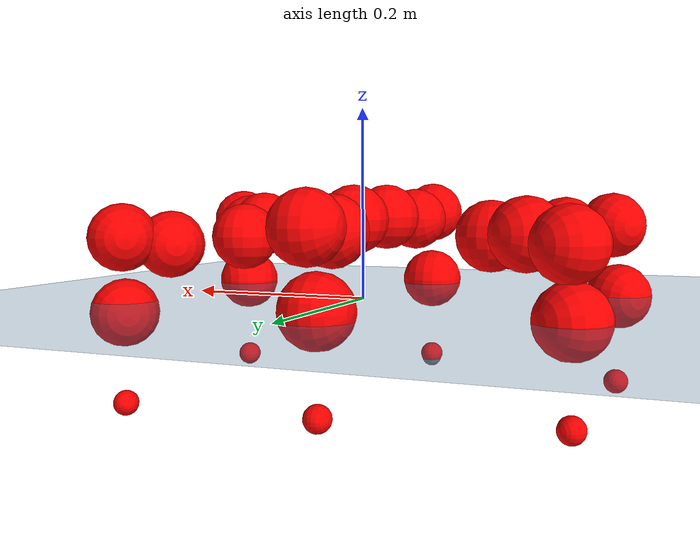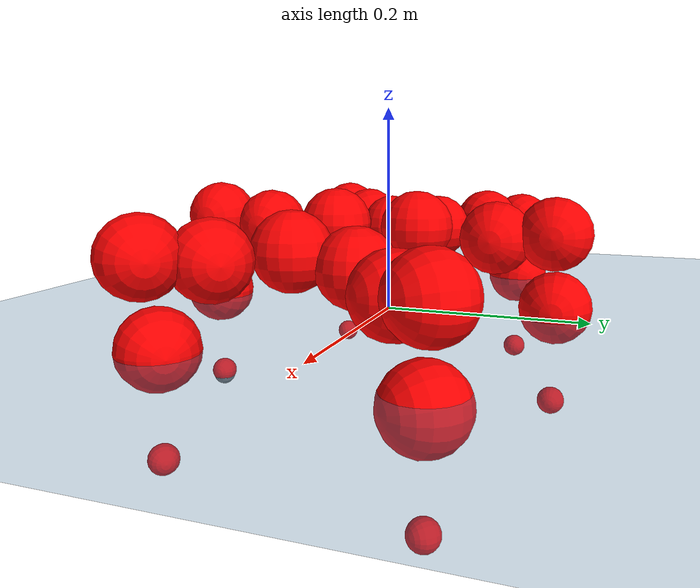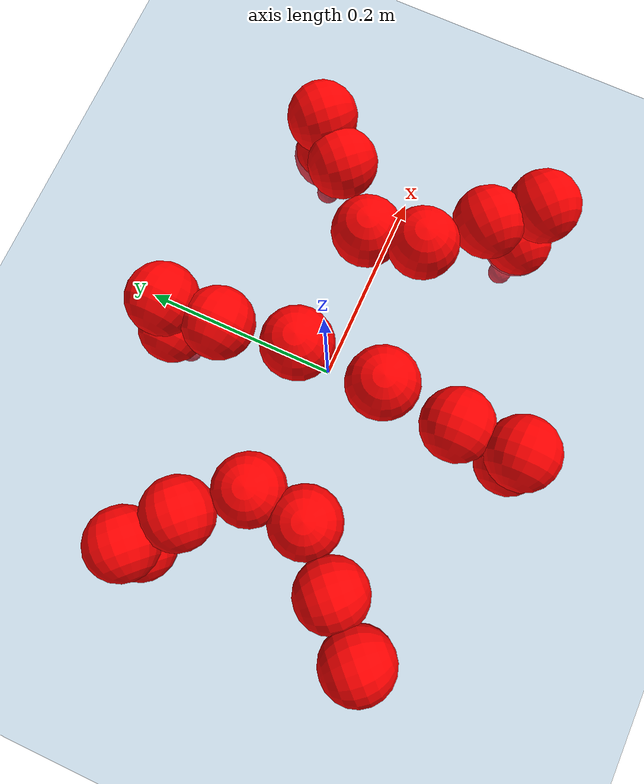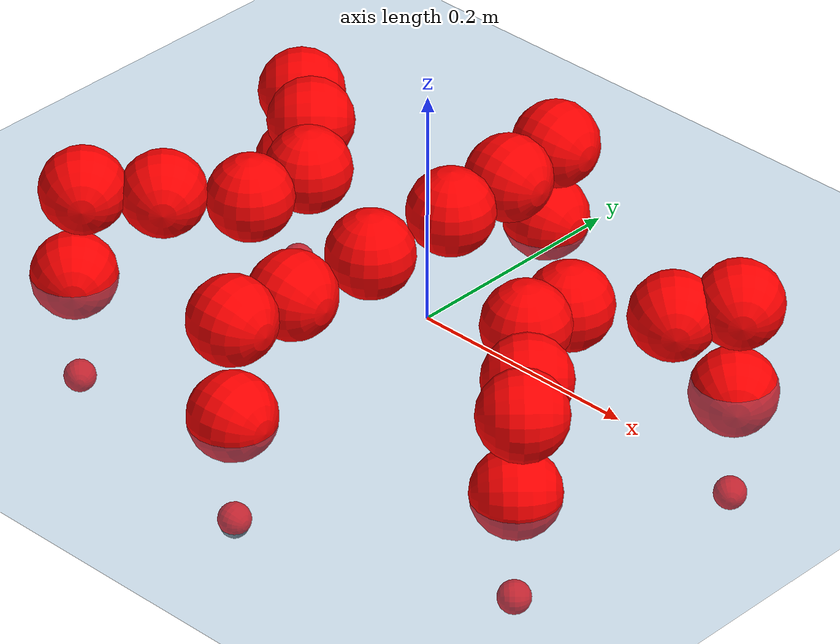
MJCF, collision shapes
<mujoco model="Golem">
  <compiler angle="radian" assetdir="assets" balanceinertia="true" inertiafromgeom="false"/>

  <option timestep="0.005" density="1.2" viscosity="2e-05"/>

  <size nkey="1"/>

  <visual>
    <quality shadowsize="8192"/>
    <map shadowclip="0.5"/>
  </visual>

  <default>
    <default class="/">
      <joint armature="0.01" damping="0.01" frictionloss="0.01"/>
      <geom contype="0" conaffinity="0" group="1" solref="-1000 -80"/>
      <site size="0.01 0.005 0.005" group="5"/>
      <general forcelimited="true" biastype="affine" gainprm="25" biasprm="0 -25 -0.5"/>
      <default class="visual">
        <geom type="mesh" group="2"/>
      </default>
      <default class="collision">
        <geom group="3"/>
      </default>
      <default class="foot">
        <geom size="0.01 0 0" condim="6" group="4" priority="1" solimp="0.015 1 0.01"/>
      </default>
      <default class="reward_collision_sphere">
        <geom group="5" rgba="1 0 0 1"/>
      </default>
    </default>
  </default>

  <asset>
    <texture type="skybox" colorspace="auto" name="//unnamed_texture_0" builtin="gradient" rgb1="0.95 0.95 0.95" rgb2="0.95 0.95 0.95" width="100" height="600"/>
    <texture type="2d" colorspace="auto" name="texplane" builtin="checker" rgb1="0.345 0.575 0.748" rgb2="0.345 0.575 0.748" markrgb="1 1 1" width="512" height="512"/>
    <material name="MatPlane" class="/" texture="texplane" texuniform="true" texrepeat="2 2" specular="0.9"/>
    <mesh name="body" class="/" file="body.stl" scale="0.001 0.001 0.001"/>
    <mesh name="coxa" class="/" file="coxa.stl" scale="0.001 0.001 0.001"/>
    <mesh name="femur" class="/" file="femur.stl" scale="0.001 0.001 0.001"/>
    <mesh name="tibia" class="/" file="tibia.stl" scale="0.001 0.001 0.001"/>
    <mesh name="tarsus" class="/" file="tarsus.stl" scale="0.001 0.001 0.001"/>
  </asset>

  <worldbody>
    <geom name="floor" class="/" size="100 100 0.125" type="plane" group="0" material="MatPlane"/>
    <light name="toplight_shadow" class="/" pos="0 0 5" dir="0.0990148 0.0990148 -0.990148" type="directional" ambient="0.04 0.04 0.04" diffuse="0.55 0.55 0.55" specular="0.12 0.12 0.12"/>
    <light name="toplight_fill" class="/" pos="0 0 5" dir="0.0990148 0.0990148 -0.990148" type="directional" castshadow="false" ambient="0.04 0.04 0.04" diffuse="0.3 0.3 0.3" specular="0.08 0.08 0.08"/>
    <body name="trunk" pos="-0.0039515 -0.0104845 -0.00639936" quat="1 1.64665e-05 0.000345127 0.000670844">
      <inertial pos="0.00485978 0.00187775 0.0119645" quat="0.999996 0.000499422 0.00262802 -0.00045316" mass="2.05627" diaginertia="0.00526605 0.000364642 0.0321187"/>
      <joint name="//unnamed_joint_0" type="free"/>
      <geom name="//unnamed_geom_1" class="/" pos="0 0 0.0805858" quat="1 0 0 0" type="mesh" rgba="0.9 0.9 0.9 1" mesh="body"/>
      <site name="imu" class="/" pos="0.115486 0.0351293 0.125463" size="0.00891361"/>
      <camera name="track" class="/" pos="0 -1.05409 0" quat="0.707107 0.707107 0 0" mode="trackcom"/>
      <camera name="ego_camera" class="/" pos="0.115425 0 0.125915" quat="-0.5 -0.5 0.5 0.5"/>
      <body name="coxa_RR" pos="-0.1627 -0.0537145 0.0734341" quat="0.384557 0.00443969 -1.99001e-05 -0.923091">
        <inertial pos="-0.000428439 0.0118102 -0.0113138" quat="0.999615 0.0254106 -0.0109696 -0.00194301" mass="0.123382" diaginertia="0.00530181 0.000417931 0.0316609"/>
        <joint name="coxa_joint_RR" class="/" pos="0 0 0" axis="0.00119493 -0.00428742 -0.99999" range="-3.30572 3.15219" armature="0.00833554" damping="0.0185287" frictionloss="0.00915559"/>
        <geom name="//unnamed_geom_2" class="/" type="mesh" rgba="0.2 0.2 0.2 1" mesh="coxa"/>
        <geom name="//unnamed_geom_3" class="reward_collision_sphere" size="0.0356545" pos="-0.0266366 0 0"/>
        <body name="femur_RR" pos="0.0411345 -0.000391713 0.00497474" quat="0.500901 -0.496103 0.500046 0.502925">
          <inertial pos="0.00840486 -0.00252949 0.0019833" quat="0.999997 -0.00155089 -0.0015957 0.000490938" mass="0.13662" diaginertia="0.00530651 0.00038606 0.0301988"/>
          <joint name="femur_joint_RR" class="/" pos="0 0 0" axis="-0.00371324 0.00659734 -0.999971" range="-2.99642 3.01626" armature="0.0127216" damping="0.025922" frictionloss="0.00882302"/>
          <geom name="//unnamed_geom_4" class="/" type="mesh" rgba="0.9 0.9 0.9 1" mesh="femur"/>
          <geom name="//unnamed_geom_5" class="reward_collision_sphere" size="0.0356545"/>
          <body name="tibia_RR" pos="-0.00525129 -0.0626339 0.000343154" quat="4.69973e-05 1 1.63968e-05 0.000132548">
            <inertial pos="-0.00555021 0.000695442 -0.00182253" quat="0.999566 0.0178347 -0.00252614 0.0233109" mass="0.145626" diaginertia="0.00503172 0.000337269 0.0248979"/>
            <joint name="tibia_joint_RR" class="/" pos="0 0 0" axis="0.00743021 0.0387733 0.99922" stiffness="0.0230311" range="-3.0379 3.39965" armature="0.00945117" damping="0" frictionloss="0.00860766"/>
            <geom name="//unnamed_geom_6" class="/" type="mesh" rgba="0.2 0.2 0.2 1" mesh="tibia"/>
            <geom name="//unnamed_geom_7" class="reward_collision_sphere" size="0.0356545"/>
            <body name="tarsus_RR" pos="0.078691 0.0105148 0.000487649" quat="1 -1.54937e-05 -3.93294e-08 2.22053e-05">
              <inertial pos="0.0447638 -0.0129305 0.00938524" quat="0.519398 0.50248 0.485361 0.492102" mass="0.123308" diaginertia="0.00515226 0.000311185 0.0275802"/>
              <joint name="tarsus_joint_RR" class="/" pos="0 0 0" axis="-0.00706287 -0.0289794 0.999555" stiffness="0.0039469" range="-3.3718 3.16687" armature="0.00739068" damping="0.0415111" frictionloss="0.00644427"/>
              <geom name="//unnamed_geom_8" class="/" type="mesh" rgba="0.9 0.9 0.9 1" mesh="tarsus"/>
              <geom name="foot_1" class="foot" size="0.00749809" pos="0.0994434 0 0" quat="0 -0.707107 0 0.707107"/>
              <geom name="//unnamed_geom_10" class="reward_collision_sphere" size="0.0356545"/>
              <geom name="//unnamed_geom_11" class="reward_collision_sphere" size="0.0133704" pos="0.0954479 0 0"/>
              <site name="foot_1" class="foot" pos="0.0994434 0 0" quat="0 -0.707107 0 0.707107" size="0.00891361"/>
            </body>
          </body>
        </body>
      </body>
      <body name="coxa_RM" pos="-0.000426266 -0.0745583 0.0915423" quat="0.706962 0.000414748 -0.000370103 -0.707251">
        <inertial pos="0.000481843 -0.00493943 -0.00286207" quat="0.999978 -0.000195949 0.00403338 -0.0052658" mass="0.149824" diaginertia="0.00536293 0.000389085 0.0306895"/>
        <joint name="coxa_joint_RM" class="/" pos="0 0 0" axis="-0.0047752 0.0211968 -0.999764" stiffness="0.054652" range="-3.10693 3.18991" armature="0.00782557" damping="0.0301522" frictionloss="0.0145189"/>
        <geom name="//unnamed_geom_12" class="/" type="mesh" rgba="0.2 0.2 0.2 1" mesh="coxa"/>
        <geom name="//unnamed_geom_13" class="reward_collision_sphere" size="0.0356545" pos="-0.0266366 0 0"/>
        <body name="femur_RM" pos="0.050772 -0.00684701 -0.00400647" quat="0.500135 -0.500157 0.499561 0.500146">
          <inertial pos="-0.00198973 0.00582397 -0.00842322" quat="0.999951 -0.00571781 0.00660382 0.00461232" mass="0.140399" diaginertia="0.00623736 0.00042241 0.0309978"/>
          <joint name="femur_joint_RM" class="/" pos="0 0 0" axis="0.00856171 0.00435686 -0.999954" range="-3.1819 3.25033" armature="0.00888547" damping="0.0469544" frictionloss="0.00836482"/>
          <geom name="//unnamed_geom_14" class="/" type="mesh" rgba="0.9 0.9 0.9 1" mesh="femur"/>
          <geom name="//unnamed_geom_15" class="reward_collision_sphere" size="0.0356545"/>
          <body name="tibia_RM" pos="-0.00682133 -0.0627708 -0.00119511" quat="-0.000185604 1 0.000339305 -0.00010882">
            <inertial pos="0.0118145 0.0107593 -0.00340196" quat="0.998197 -0.054669 0.0163415 0.0186419" mass="0.142288" diaginertia="0.00534751 0.000399582 0.0357211"/>
            <joint name="tibia_joint_RM" class="/" pos="0 0 0" axis="0.00221415 -3.85354e-05 0.999998" range="-3.11988 3.0371" armature="0.00619552" damping="0" frictionloss="0.00613952"/>
            <geom name="//unnamed_geom_16" class="/" type="mesh" rgba="0.2 0.2 0.2 1" mesh="tibia"/>
            <geom name="//unnamed_geom_17" class="reward_collision_sphere" size="0.0356545"/>
            <body name="tarsus_RM" pos="0.0838543 0.00424916 -0.00223645" quat="0.999999 0.000631222 0.000335784 0.00080487">
              <inertial pos="0.0529884 0.00104885 0.00128342" quat="0.500359 0.49945 0.499419 0.50077" mass="0.129511" diaginertia="0.00476613 0.000374791 0.0284837"/>
              <joint name="tarsus_joint_RM" class="/" pos="0 0 0" axis="-0.00665227 0.00779062 0.999948" stiffness="0.022982" range="-3.12829 3.11066" armature="0.0141404" damping="0" frictionloss="0.00891017"/>
              <geom name="//unnamed_geom_18" class="/" type="mesh" rgba="0.9 0.9 0.9 1" mesh="tarsus"/>
              <geom name="foot_2" class="foot" size="0.0118261" pos="0.0994434 0 0" quat="0 -0.707107 0 0.707107"/>
              <geom name="//unnamed_geom_20" class="reward_collision_sphere" size="0.0356545"/>
              <geom name="//unnamed_geom_21" class="reward_collision_sphere" size="0.0133704" pos="0.0954479 0 0"/>
              <site name="foot_2" class="foot" pos="0.0994434 0 0" quat="0 -0.707107 0 0.707107" size="0.00891361"/>
            </body>
          </body>
        </body>
      </body>
      <body name="coxa_RF" pos="0.161632 -0.0469708 0.0830569" quat="0.923907 -0.000329391 4.31477e-05 -0.382618">
        <inertial pos="-0.00959738 0.000363483 -0.000758179" quat="0.999999 0.00108758 -0.00116548 -0.000170734" mass="0.141167" diaginertia="0.00481172 0.000405898 0.0362918"/>
        <joint name="coxa_joint_RF" class="/" pos="0 0 0" axis="0.00319495 0.00410482 -0.999986" stiffness="0.0157496" range="-3.00668 3.14119" armature="0.0114805" damping="0.0211221" frictionloss="0.00874367"/>
        <geom name="//unnamed_geom_22" class="/" type="mesh" rgba="0.2 0.2 0.2 1" mesh="coxa"/>
        <geom name="//unnamed_geom_23" class="reward_collision_sphere" size="0.0356545" pos="-0.0266366 0 0"/>
        <body name="femur_RF" pos="0.0416877 -0.00174905 -0.00315706" quat="0.49943 -0.500296 0.500122 0.500152">
          <inertial pos="-0.0015475 0.000980033 0.00876606" quat="0.999916 -0.00155212 -0.00935534 0.00884188" mass="0.155614" diaginertia="0.00585187 0.00034384 0.0311668"/>
          <joint name="femur_joint_RF" class="/" pos="0 0 0" axis="-0.000866809 0.00119089 -0.999999" stiffness="0.0347903" range="-3.33551 3.10161" armature="0.0057417" damping="0.0437506" frictionloss="0.00727464"/>
          <geom name="//unnamed_geom_24" class="/" type="mesh" rgba="0.9 0.9 0.9 1" mesh="femur"/>
          <geom name="//unnamed_geom_25" class="reward_collision_sphere" size="0.0356545"/>
          <body name="tibia_RF" pos="-0.0057088 -0.0543724 -0.00594926" quat="-4.54398e-05 1 -0.000158406 3.7045e-05">
            <inertial pos="-0.00360527 -0.00696834 0.00165417" quat="0.999912 -0.0054762 0.0112572 -0.00436936" mass="0.146561" diaginertia="0.00473264 0.000446929 0.0287553"/>
            <joint name="tibia_joint_RF" class="/" pos="0 0 0" axis="-0.00344089 -0.00407029 0.999986" range="-3.13549 3.16998" armature="0.00715493" damping="0.0142636" frictionloss="0.0128871"/>
            <geom name="//unnamed_geom_26" class="/" type="mesh" rgba="0.2 0.2 0.2 1" mesh="tibia"/>
            <geom name="//unnamed_geom_27" class="reward_collision_sphere" size="0.0356545"/>
            <body name="tarsus_RF" pos="0.0769186 -0.0107628 0.00338292" quat="0.999984 -0.00378507 0.000168863 0.00415027">
              <inertial pos="0.0564627 0.0115698 0.00175526" quat="0.495462 0.520056 0.531264 0.449242" mass="0.155489" diaginertia="0.00472036 0.000464297 0.0316549"/>
              <joint name="tarsus_joint_RF" class="/" pos="0 0 0" axis="0.0118656 0.0401628 0.999123" stiffness="0.0492204" range="-3.3657 3.13725" armature="0.00350498" damping="0" frictionloss="0.00881651"/>
              <geom name="//unnamed_geom_28" class="/" type="mesh" rgba="0.9 0.9 0.9 1" mesh="tarsus"/>
              <geom name="foot_3" class="foot" size="0.0097251" pos="0.0994434 0 0" quat="0 -0.707107 0 0.707107"/>
              <geom name="//unnamed_geom_30" class="reward_collision_sphere" size="0.0356545"/>
              <geom name="//unnamed_geom_31" class="reward_collision_sphere" size="0.0133704" pos="0.0954479 0 0"/>
              <site name="foot_3" class="foot" pos="0.0994434 0 0" quat="0 -0.707107 0 0.707107" size="0.00891361"/>
            </body>
          </body>
        </body>
      </body>
      <body name="coxa_LR" pos="-0.156917 0.0431342 0.0752792" quat="0.383818 -0.000288765 0.00172174 0.923407">
        <inertial pos="0.00273024 0.0120002 -0.00242472" quat="0.999028 0.0208074 -0.0265468 0.0283864" mass="0.159773" diaginertia="0.00627707 0.000401644 0.0369555"/>
        <joint name="coxa_joint_LR" class="/" pos="0 0 0" axis="0.0163603 0.0190103 -0.999685" stiffness="0.0374696" range="-3.04275 2.9102" armature="0.0136567" damping="0" frictionloss="0.00920365"/>
        <geom name="//unnamed_geom_32" class="/" type="mesh" rgba="0.2 0.2 0.2 1" mesh="coxa"/>
        <geom name="//unnamed_geom_33" class="reward_collision_sphere" size="0.0356545" pos="-0.0266366 0 0"/>
        <body name="femur_LR" pos="0.040033 -0.00218936 0.00460843" quat="0.502169 -0.501436 0.497138 0.499241">
          <inertial pos="-0.00282943 0.0015131 -0.00142998" quat="0.99839 0.0172119 -0.0362033 0.0401246" mass="0.154244" diaginertia="0.00562889 0.000412987 0.0268267"/>
          <joint name="femur_joint_LR" class="/" pos="0 0 0" axis="0.00413373 0.0266069 0.999637" stiffness="0.0458717" range="-3.3893 3.31582" armature="0.00644098" damping="0.0380344" frictionloss="0.00893686"/>
          <geom name="//unnamed_geom_34" class="/" type="mesh" rgba="0.9 0.9 0.9 1" mesh="femur"/>
          <geom name="//unnamed_geom_35" class="reward_collision_sphere" size="0.0356545"/>
          <body name="tibia_LR" pos="0.006808 -0.0566432 0.00704835" quat="0.00199694 0.999996 0.00181444 0.000922856">
            <inertial pos="-0.000207536 0.0112567 -0.00714377" quat="0.999498 0.0260138 -0.0179945 0.00204747" mass="0.144369" diaginertia="0.0051109 0.000389224 0.0326759"/>
            <joint name="tibia_joint_LR" class="/" pos="0 0 0" axis="0.0010277 -0.00412312 -0.999991" stiffness="0.00688162" range="-2.96132 3.01827" armature="0.0113745" damping="0.0752889" frictionloss="0.00593992"/>
            <geom name="//unnamed_geom_36" class="/" type="mesh" rgba="0.2 0.2 0.2 1" mesh="tibia"/>
            <geom name="//unnamed_geom_37" class="reward_collision_sphere" size="0.0356545"/>
            <body name="tarsus_LR" pos="0.0666695 -0.00033963 -0.00295733" quat="0.999988 0.000970282 0.00203869 -0.0043439">
              <inertial pos="0.0495485 0.000674971 -9.75956e-05" quat="0.501298 0.525246 0.476156 0.496078" mass="0.133368" diaginertia="0.00504581 0.000371425 0.0287126"/>
              <joint name="tarsus_joint_LR" class="/" pos="0 0 0" axis="0.000420603 -0.00431376 -0.999991" stiffness="0.0478908" range="-2.93997 3.16929" armature="0.00894179" damping="0.032577" frictionloss="0.0135489"/>
              <geom name="//unnamed_geom_38" class="/" type="mesh" rgba="0.9 0.9 0.9 1" mesh="tarsus"/>
              <geom name="foot_4" class="foot" size="0.00916034" pos="0.0994434 0 0" quat="0.707107 0 -0.707107 0"/>
              <geom name="//unnamed_geom_40" class="reward_collision_sphere" size="0.0356545"/>
              <geom name="//unnamed_geom_41" class="reward_collision_sphere" size="0.0133704" pos="0.0954479 0 0"/>
              <site name="foot_4" class="foot" pos="0.0994434 0 0" quat="0.707107 0 -0.707107 0" size="0.00891361"/>
            </body>
          </body>
        </body>
      </body>
      <body name="coxa_LM" pos="0.00182717 0.0660257 0.090627" quat="0.708174 -0.000545189 0.00240476 0.706034">
        <inertial pos="0.00967997 0.0027122 0.00845831" quat="0.999977 0.0031352 0.00523511 0.00305928" mass="0.142146" diaginertia="0.00619272 0.000466947 0.0274978"/>
        <joint name="coxa_joint_LM" class="/" pos="0 0 0" axis="-0.000647054 -0.00307464 -0.999995" range="-3.13298 3.12499" armature="0.00425876" damping="0.0639651" frictionloss="0.0120161"/>
        <geom name="//unnamed_geom_42" class="/" type="mesh" rgba="0.2 0.2 0.2 1" mesh="coxa"/>
        <geom name="//unnamed_geom_43" class="reward_collision_sphere" size="0.0356545" pos="-0.0266366 0 0"/>
        <body name="femur_LM" pos="0.0508992 0.01088 -0.00867775" quat="0.500068 -0.500023 0.49984 0.500069">
          <inertial pos="-0.0086419 -0.00532692 -0.0104799" quat="0.999969 0.00123798 0.00122529 -0.00769952" mass="0.142433" diaginertia="0.0051819 0.000400053 0.0332222"/>
          <joint name="femur_joint_LM" class="/" pos="0 0 0" axis="-0.0146071 -0.00470982 0.999882" range="-3.14121 3.30975" armature="0.00657006" damping="0.0259062" frictionloss="0.00566331"/>
          <geom name="//unnamed_geom_44" class="/" type="mesh" rgba="0.9 0.9 0.9 1" mesh="femur"/>
          <geom name="//unnamed_geom_45" class="reward_collision_sphere" size="0.0356545"/>
          <body name="tibia_LM" pos="-0.00582096 -0.0564071 0.00160329" quat="0.000338284 1 0.000459676 -3.12449e-05">
            <inertial pos="0.00632733 0.0117562 -0.0125207" quat="0.998002 0.0495111 0.0381868 0.00904251" mass="0.148239" diaginertia="0.00531611 0.000418678 0.0352866"/>
            <joint name="tibia_joint_LM" class="/" pos="0 0 0" axis="0.0412048 -0.00602894 -0.999133" stiffness="0.0607031" range="-3.16423 3.34796" armature="0.0071706" damping="0.00526815" frictionloss="0.00828738"/>
            <geom name="//unnamed_geom_46" class="/" type="mesh" rgba="0.2 0.2 0.2 1" mesh="tibia"/>
            <geom name="//unnamed_geom_47" class="reward_collision_sphere" size="0.0356545"/>
            <body name="tarsus_LM" pos="0.0735374 0.00179536 -0.0102636" quat="0.999998 0.00160111 -0.000702138 0.000138075">
              <inertial pos="0.0581595 0.00251923 0.00946053" quat="0.47186 0.539158 0.470981 0.51462" mass="0.132184" diaginertia="0.00582614 0.00047759 0.036573"/>
              <joint name="tarsus_joint_LM" class="/" pos="0 0 0" axis="-0.0123227 0.0477681 -0.998782" stiffness="0.0390879" range="-3.16488 3.34216" armature="0.011089" damping="0" frictionloss="0.00909099"/>
              <geom name="//unnamed_geom_48" class="/" type="mesh" rgba="0.9 0.9 0.9 1" mesh="tarsus"/>
              <geom name="foot_5" class="foot" size="0.00900641" pos="0.0994434 0 0" quat="0.707107 0 -0.707107 0"/>
              <geom name="//unnamed_geom_50" class="reward_collision_sphere" size="0.0356545"/>
              <geom name="//unnamed_geom_51" class="reward_collision_sphere" size="0.0133704" pos="0.0954479 0 0"/>
              <site name="foot_5" class="foot" pos="0.0994434 0 0" quat="0.707107 0 -0.707107 0" size="0.00891361"/>
            </body>
          </body>
        </body>
      </body>
      <body name="coxa_LF" pos="0.155547 0.0461216 0.0709033" quat="0.925896 0.0010048 -0.000488874 0.377777">
        <inertial pos="-0.00236628 0.00183043 -0.00386674" quat="0.998016 -0.00274795 -0.0388152 -0.0494864" mass="0.120149" diaginertia="0.0058075 0.000347783 0.0361446"/>
        <joint name="coxa_joint_LF" class="/" pos="0 0 0" axis="0.0078487 0.0124892 -0.999891" stiffness="0.0428246" range="-3.12961 3.12776" armature="0.00975651" damping="0.0352131" frictionloss="0.0084667"/>
        <geom name="//unnamed_geom_52" class="/" type="mesh" rgba="0.2 0.2 0.2 1" mesh="coxa"/>
        <geom name="//unnamed_geom_53" class="reward_collision_sphere" size="0.0356545" pos="-0.0266366 0 0"/>
        <body name="femur_LF" pos="0.0521781 -0.00359055 -0.00735421" quat="0.499575 -0.499439 0.501366 0.499618">
          <inertial pos="-0.0100434 0.00296986 -0.0114275" quat="0.999855 -0.014186 -0.00718194 0.00607768" mass="0.162306" diaginertia="0.00610952 0.000402561 0.0342797"/>
          <joint name="femur_joint_LF" class="/" pos="0 0 0" axis="0.00614173 -0.0322548 0.999461" stiffness="0.00176589" range="-3.16769 2.88308" armature="0.00515521" damping="0.0399409" frictionloss="0.00940501"/>
          <geom name="//unnamed_geom_54" class="/" type="mesh" rgba="0.9 0.9 0.9 1" mesh="femur"/>
          <geom name="//unnamed_geom_55" class="reward_collision_sphere" size="0.0356545"/>
          <body name="tibia_LF" pos="-0.00837072 -0.0504601 0.00296806" quat="-0.00184003 0.999994 -0.00249098 -0.0018358">
            <inertial pos="0.00169648 -0.00188218 0.00091818" quat="0.999969 -0.0021085 -0.00631845 0.00412982" mass="0.141693" diaginertia="0.00541042 0.000411549 0.0318524"/>
            <joint name="tibia_joint_LF" class="/" pos="0 0 0" axis="-0.0398558 -0.020151 -0.999002" range="-3.06154 2.98902" armature="0.0137128" damping="0.00350929" frictionloss="0.00763235"/>
            <geom name="//unnamed_geom_56" class="/" type="mesh" rgba="0.2 0.2 0.2 1" mesh="tibia"/>
            <geom name="//unnamed_geom_57" class="reward_collision_sphere" size="0.0356545"/>
            <body name="tarsus_LF" pos="0.078588 -0.00231428 0.00219851" quat="0.999998 -0.000656592 0.00180764 0.000312508">
              <inertial pos="0.0623771 -0.00341617 0.00102597" quat="0.499618 0.495356 0.500814 0.504172" mass="0.159823" diaginertia="0.00596976 0.000443875 0.0318666"/>
              <joint name="tarsus_joint_LF" class="/" pos="0 0 0" axis="0.0195061 0.0153594 -0.999692" stiffness="0.0261298" range="-2.923 2.9135" armature="0.00867242" damping="0.0329672" frictionloss="0.00849293"/>
              <geom name="//unnamed_geom_58" class="/" type="mesh" rgba="0.9 0.9 0.9 1" mesh="tarsus"/>
              <geom name="foot_6" class="foot" size="0.00811705" pos="0.0994434 0 0" quat="0.707107 0 -0.707107 0"/>
              <geom name="//unnamed_geom_60" class="reward_collision_sphere" size="0.0356545"/>
              <geom name="//unnamed_geom_61" class="reward_collision_sphere" size="0.0133704" pos="0.0954479 0 0"/>
              <site name="foot_6" class="foot" pos="0.0994434 0 0" quat="0.707107 0 -0.707107 0" size="0.00891361"/>
            </body>
          </body>
        </body>
      </body>
    </body>
  </worldbody>

  <contact>
    <pair class="/" geom1="floor" geom2="foot_1" name="//unnamed_contact_0"/>
    <pair class="/" geom1="floor" geom2="foot_2" name="//unnamed_contact_1"/>
    <pair class="/" geom1="floor" geom2="foot_3" name="//unnamed_contact_2"/>
    <pair class="/" geom1="floor" geom2="foot_4" name="//unnamed_contact_3"/>
    <pair class="/" geom1="floor" geom2="foot_5" name="//unnamed_contact_4"/>
    <pair class="/" geom1="floor" geom2="foot_6" name="//unnamed_contact_5"/>
  </contact>

  <actuator>
    <general name="coxa_joint_RR" class="/" joint="coxa_joint_RR" forcerange="-5.45343 5.45343" gainprm="21.4647" biasprm="0 -21.4647 -0.412173"/>
    <general name="femur_joint_RR" class="/" joint="femur_joint_RR" forcerange="-7.81952 7.81952" gainprm="21.4647" biasprm="0 -21.4647 -0.412173"/>
    <general name="tibia_joint_RR" class="/" joint="tibia_joint_RR" forcerange="-9.37041 9.37041" gainprm="21.4647" biasprm="0 -21.4647 -0.412173"/>
    <general name="tarsus_joint_RR" class="/" joint="tarsus_joint_RR" forcerange="-8.19621 8.19621" gainprm="21.4647" biasprm="0 -21.4647 -0.412173"/>
    <general name="coxa_joint_RM" class="/" joint="coxa_joint_RM" forcerange="-6.59868 6.59868" gainprm="21.4647" biasprm="0 -21.4647 -0.412173"/>
    <general name="femur_joint_RM" class="/" joint="femur_joint_RM" forcerange="-6.78045 6.78045" gainprm="21.4647" biasprm="0 -21.4647 -0.412173"/>
    <general name="tibia_joint_RM" class="/" joint="tibia_joint_RM" forcerange="-9.58804 9.58804" gainprm="21.4647" biasprm="0 -21.4647 -0.412173"/>
    <general name="tarsus_joint_RM" class="/" joint="tarsus_joint_RM" forcerange="-7.16667 7.16667" gainprm="21.4647" biasprm="0 -21.4647 -0.412173"/>
    <general name="coxa_joint_RF" class="/" joint="coxa_joint_RF" forcerange="-6.2642 6.2642" gainprm="21.4647" biasprm="0 -21.4647 -0.412173"/>
    <general name="femur_joint_RF" class="/" joint="femur_joint_RF" forcerange="-3.42295 3.42295" gainprm="21.4647" biasprm="0 -21.4647 -0.412173"/>
    <general name="tibia_joint_RF" class="/" joint="tibia_joint_RF" forcerange="-5.19897 5.19897" gainprm="21.4647" biasprm="0 -21.4647 -0.412173"/>
    <general name="tarsus_joint_RF" class="/" joint="tarsus_joint_RF" forcerange="-3.44591 3.44591" gainprm="21.4647" biasprm="0 -21.4647 -0.412173"/>
    <general name="coxa_joint_LR" class="/" joint="coxa_joint_LR" forcerange="-8.7987 8.7987" gainprm="21.4647" biasprm="0 -21.4647 -0.412173"/>
    <general name="femur_joint_LR" class="/" joint="femur_joint_LR" forcerange="-5.59093 5.59093" gainprm="21.4647" biasprm="0 -21.4647 -0.412173"/>
    <general name="tibia_joint_LR" class="/" joint="tibia_joint_LR" forcerange="-4.96752 4.96752" gainprm="21.4647" biasprm="0 -21.4647 -0.412173"/>
    <general name="tarsus_joint_LR" class="/" joint="tarsus_joint_LR" forcerange="-6.1183 6.1183" gainprm="21.4647" biasprm="0 -21.4647 -0.412173"/>
    <general name="coxa_joint_LM" class="/" joint="coxa_joint_LM" forcerange="-5.27434 5.27434" gainprm="21.4647" biasprm="0 -21.4647 -0.412173"/>
    <general name="femur_joint_LM" class="/" joint="femur_joint_LM" forcerange="-6.37293 6.37293" gainprm="21.4647" biasprm="0 -21.4647 -0.412173"/>
    <general name="tibia_joint_LM" class="/" joint="tibia_joint_LM" forcerange="-9.21228 9.21228" gainprm="21.4647" biasprm="0 -21.4647 -0.412173"/>
    <general name="tarsus_joint_LM" class="/" joint="tarsus_joint_LM" forcerange="-8.38195 8.38195" gainprm="21.4647" biasprm="0 -21.4647 -0.412173"/>
    <general name="coxa_joint_LF" class="/" joint="coxa_joint_LF" forcerange="-5.67219 5.67219" gainprm="21.4647" biasprm="0 -21.4647 -0.412173"/>
    <general name="femur_joint_LF" class="/" joint="femur_joint_LF" forcerange="-8.88673 8.88673" gainprm="21.4647" biasprm="0 -21.4647 -0.412173"/>
    <general name="tibia_joint_LF" class="/" joint="tibia_joint_LF" forcerange="-6.88561 6.88561" gainprm="21.4647" biasprm="0 -21.4647 -0.412173"/>
    <general name="tarsus_joint_LF" class="/" joint="tarsus_joint_LF" forcerange="-6.61843 6.61843" gainprm="21.4647" biasprm="0 -21.4647 -0.412173"/>
  </actuator>

  <sensor>
    <gyro site="imu" name="imu_angular_velocity"/>
    <velocimeter site="imu" name="imu_linear_velocity"/>
    <framelinvel objtype="site" objname="foot_1" name="foot_1_global_linear_velocity"/>
    <framelinvel objtype="site" objname="foot_2" name="foot_2_global_linear_velocity"/>
    <framelinvel objtype="site" objname="foot_3" name="foot_3_global_linear_velocity"/>
    <framelinvel objtype="site" objname="foot_4" name="foot_4_global_linear_velocity"/>
    <framelinvel objtype="site" objname="foot_5" name="foot_5_global_linear_velocity"/>
    <framelinvel objtype="site" objname="foot_6" name="foot_6_global_linear_velocity"/>
  </sensor>

  <keyframe>
    <key name="home" qpos="0 0 0.1457 1 0 0 0 0 0 0 0 0 0 0 0 0 0 0 0 0 0 0 0 0 0 0 0 0 0 0 0"/>
  </keyframe>
</mujoco>
